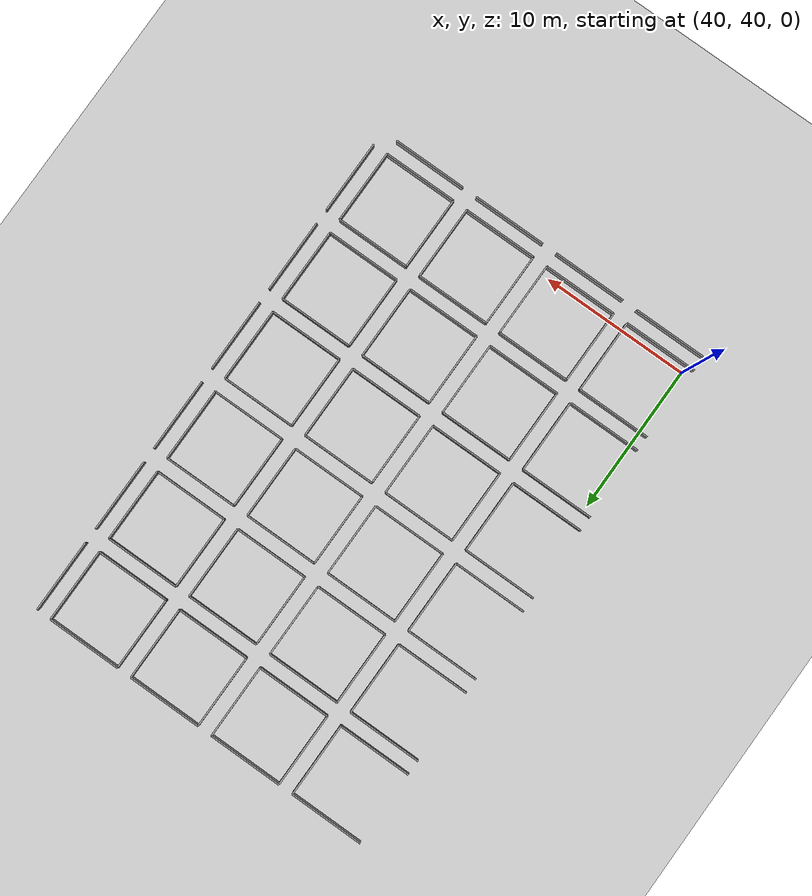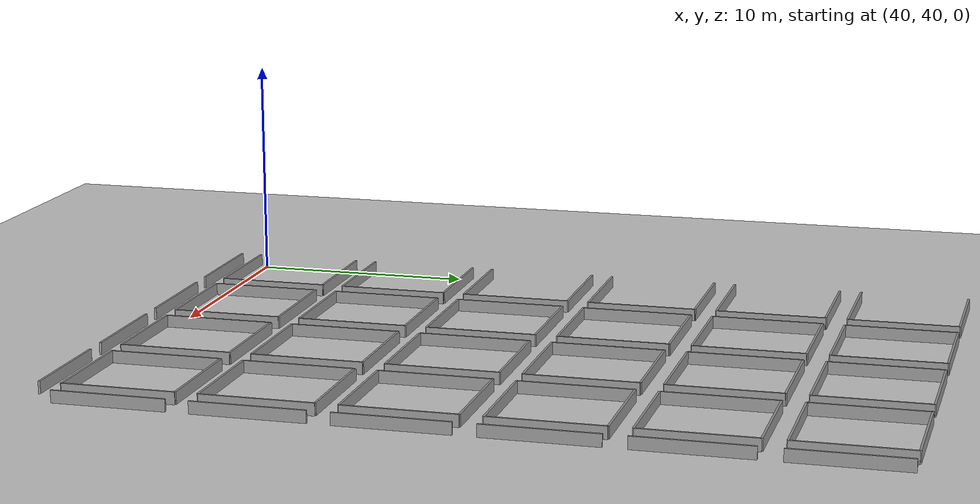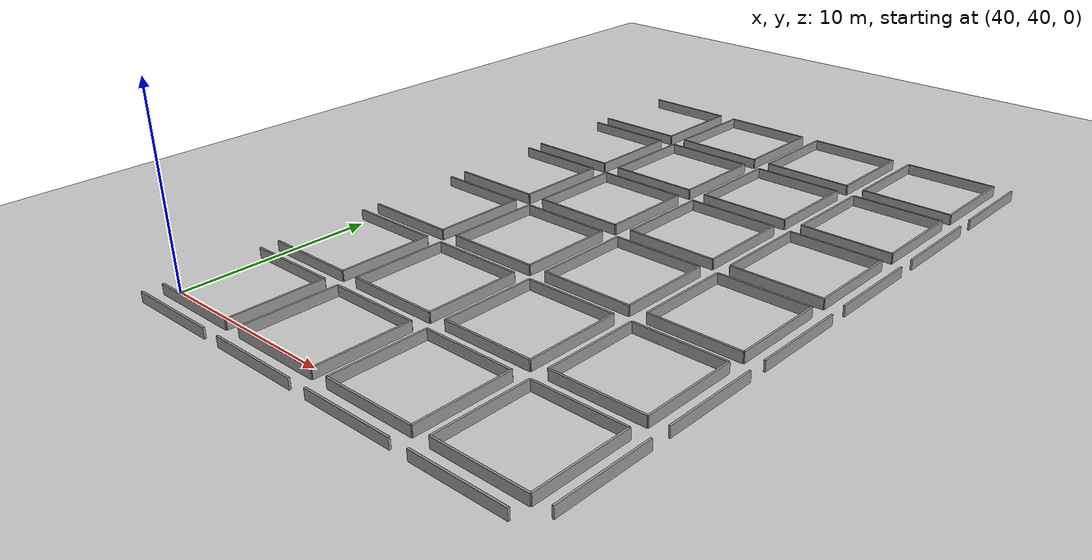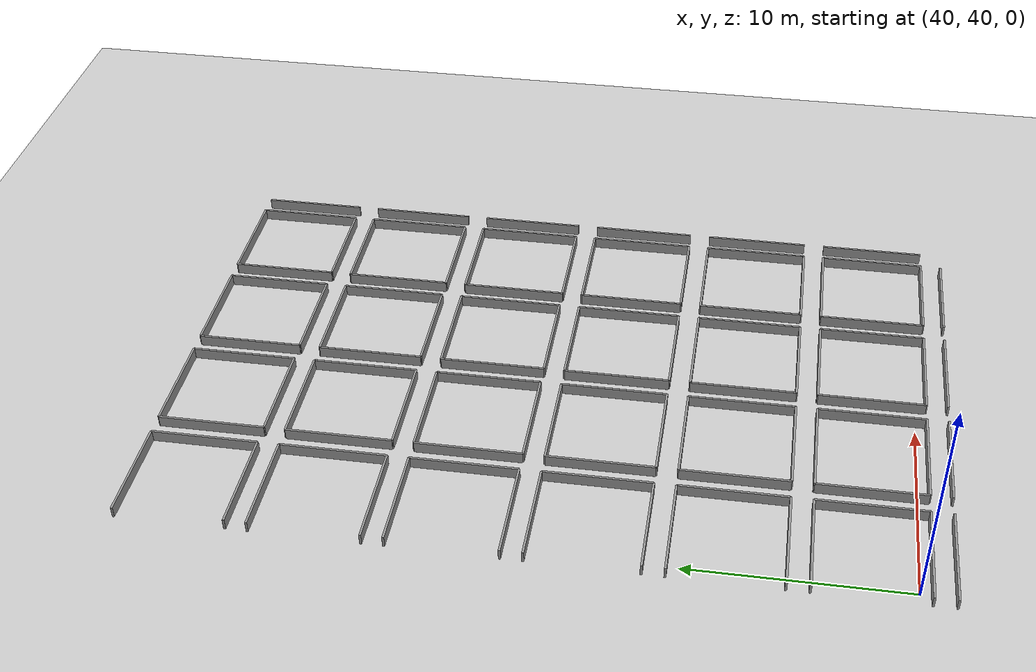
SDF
<sdf version="1.7">
 <world name="default">
  <include><uri>model://sun</uri></include>
  <model name="ground_plane">
   <static>true</static>
   <link name="link">
    <collision name="collision">
     <geometry><plane><normal>0 0 1</normal><size>100 100</size></plane></geometry>
    </collision>
    <visual name="visual">
     <geometry><plane><normal>0 0 1</normal><size>100 100</size></plane></geometry>
     <material>
      <script><uri>file://media/materials/scripts/gazebo.material</uri><name>Gazebo/Grey</name></script>
     </material>
    </visual>
   </link>
  </model>
  <model name="wall_97_north">
   <static>true</static>
   <pose>42 38.5 0 0 0 0</pose>
   <link name="link">
    <collision name="collision"><geometry><box><size>5 0.1 1</size></box></geometry></collision>
    <visual name="visual">
     <geometry><box><size>5 0.1 1</size></box></geometry>
     <material>
      <script><uri>file://media/materials/scripts/gazebo.material</uri><name>Gazebo/Grey</name></script>
     </material>
    </visual>
   </link>
  </model>
  <model name="wall_98_north">
   <static>true</static>
   <pose>48 38.5 0 0 0 0</pose>
   <link name="link">
    <collision name="collision"><geometry><box><size>5 0.1 1</size></box></geometry></collision>
    <visual name="visual">
     <geometry><box><size>5 0.1 1</size></box></geometry>
     <material>
      <script><uri>file://media/materials/scripts/gazebo.material</uri><name>Gazebo/Grey</name></script>
     </material>
    </visual>
   </link>
  </model>
  <model name="wall_99_north">
   <static>true</static>
   <pose>54 38.5 0 0 0 0</pose>
   <link name="link">
    <collision name="collision"><geometry><box><size>5 0.1 1</size></box></geometry></collision>
    <visual name="visual">
     <geometry><box><size>5 0.1 1</size></box></geometry>
     <material>
      <script><uri>file://media/materials/scripts/gazebo.material</uri><name>Gazebo/Grey</name></script>
     </material>
    </visual>
   </link>
  </model>
  <model name="wall_100_north">
   <static>true</static>
   <pose>60 38.5 0 0 0 0</pose>
   <link name="link">
    <collision name="collision"><geometry><box><size>5 0.1 1</size></box></geometry></collision>
    <visual name="visual">
     <geometry><box><size>5 0.1 1</size></box></geometry>
     <material>
      <script><uri>file://media/materials/scripts/gazebo.material</uri><name>Gazebo/Grey</name></script>
     </material>
    </visual>
   </link>
  </model>
  <model name="wall_112_north">
   <static>true</static>
   <pose>42 44.5 0 0 0 0</pose>
   <link name="link">
    <collision name="collision"><geometry><box><size>5 0.1 1</size></box></geometry></collision>
    <visual name="visual">
     <geometry><box><size>5 0.1 1</size></box></geometry>
     <material>
      <script><uri>file://media/materials/scripts/gazebo.material</uri><name>Gazebo/Grey</name></script>
     </material>
    </visual>
   </link>
  </model>
  <model name="wall_112_south">
   <static>true</static>
   <pose>42 39.5 0 0 0 0</pose>
   <link name="link">
    <collision name="collision"><geometry><box><size>5 0.1 1</size></box></geometry></collision>
    <visual name="visual">
     <geometry><box><size>5 0.1 1</size></box></geometry>
     <material>
      <script><uri>file://media/materials/scripts/gazebo.material</uri><name>Gazebo/Grey</name></script>
     </material>
    </visual>
   </link>
  </model>
  <model name="wall_112_east">
   <static>true</static>
   <pose>44.5 42 0 0 0 1.5707</pose>
   <link name="link">
    <collision name="collision"><geometry><box><size>5 0.1 1</size></box></geometry></collision>
    <visual name="visual">
     <geometry><box><size>5 0.1 1</size></box></geometry>
     <material>
      <script><uri>file://media/materials/scripts/gazebo.material</uri><name>Gazebo/Grey</name></script>
     </material>
    </visual>
   </link>
  </model>
  <model name="wall_113_north">
   <static>true</static>
   <pose>48 44.5 0 0 0 0</pose>
   <link name="link">
    <collision name="collision"><geometry><box><size>5 0.1 1</size></box></geometry></collision>
    <visual name="visual">
     <geometry><box><size>5 0.1 1</size></box></geometry>
     <material>
      <script><uri>file://media/materials/scripts/gazebo.material</uri><name>Gazebo/Grey</name></script>
     </material>
    </visual>
   </link>
  </model>
  <model name="wall_113_south">
   <static>true</static>
   <pose>48 39.5 0 0 0 0</pose>
   <link name="link">
    <collision name="collision"><geometry><box><size>5 0.1 1</size></box></geometry></collision>
    <visual name="visual">
     <geometry><box><size>5 0.1 1</size></box></geometry>
     <material>
      <script><uri>file://media/materials/scripts/gazebo.material</uri><name>Gazebo/Grey</name></script>
     </material>
    </visual>
   </link>
  </model>
  <model name="wall_113_east">
   <static>true</static>
   <pose>50.5 42 0 0 0 1.5707</pose>
   <link name="link">
    <collision name="collision"><geometry><box><size>5 0.1 1</size></box></geometry></collision>
    <visual name="visual">
     <geometry><box><size>5 0.1 1</size></box></geometry>
     <material>
      <script><uri>file://media/materials/scripts/gazebo.material</uri><name>Gazebo/Grey</name></script>
     </material>
    </visual>
   </link>
  </model>
  <model name="wall_113_west">
   <static>true</static>
   <pose>45.5 42 0 0 0 1.5707</pose>
   <link name="link">
    <collision name="collision"><geometry><box><size>5 0.1 1</size></box></geometry></collision>
    <visual name="visual">
     <geometry><box><size>5 0.1 1</size></box></geometry>
     <material>
      <script><uri>file://media/materials/scripts/gazebo.material</uri><name>Gazebo/Grey</name></script>
     </material>
    </visual>
   </link>
  </model>
  <model name="wall_114_north">
   <static>true</static>
   <pose>54 44.5 0 0 0 0</pose>
   <link name="link">
    <collision name="collision"><geometry><box><size>5 0.1 1</size></box></geometry></collision>
    <visual name="visual">
     <geometry><box><size>5 0.1 1</size></box></geometry>
     <material>
      <script><uri>file://media/materials/scripts/gazebo.material</uri><name>Gazebo/Grey</name></script>
     </material>
    </visual>
   </link>
  </model>
  <model name="wall_114_south">
   <static>true</static>
   <pose>54 39.5 0 0 0 0</pose>
   <link name="link">
    <collision name="collision"><geometry><box><size>5 0.1 1</size></box></geometry></collision>
    <visual name="visual">
     <geometry><box><size>5 0.1 1</size></box></geometry>
     <material>
      <script><uri>file://media/materials/scripts/gazebo.material</uri><name>Gazebo/Grey</name></script>
     </material>
    </visual>
   </link>
  </model>
  <model name="wall_114_east">
   <static>true</static>
   <pose>56.5 42 0 0 0 1.5707</pose>
   <link name="link">
    <collision name="collision"><geometry><box><size>5 0.1 1</size></box></geometry></collision>
    <visual name="visual">
     <geometry><box><size>5 0.1 1</size></box></geometry>
     <material>
      <script><uri>file://media/materials/scripts/gazebo.material</uri><name>Gazebo/Grey</name></script>
     </material>
    </visual>
   </link>
  </model>
  <model name="wall_114_west">
   <static>true</static>
   <pose>51.5 42 0 0 0 1.5707</pose>
   <link name="link">
    <collision name="collision"><geometry><box><size>5 0.1 1</size></box></geometry></collision>
    <visual name="visual">
     <geometry><box><size>5 0.1 1</size></box></geometry>
     <material>
      <script><uri>file://media/materials/scripts/gazebo.material</uri><name>Gazebo/Grey</name></script>
     </material>
    </visual>
   </link>
  </model>
  <model name="wall_115_north">
   <static>true</static>
   <pose>60 44.5 0 0 0 0</pose>
   <link name="link">
    <collision name="collision"><geometry><box><size>5 0.1 1</size></box></geometry></collision>
    <visual name="visual">
     <geometry><box><size>5 0.1 1</size></box></geometry>
     <material>
      <script><uri>file://media/materials/scripts/gazebo.material</uri><name>Gazebo/Grey</name></script>
     </material>
    </visual>
   </link>
  </model>
  <model name="wall_115_south">
   <static>true</static>
   <pose>60 39.5 0 0 0 0</pose>
   <link name="link">
    <collision name="collision"><geometry><box><size>5 0.1 1</size></box></geometry></collision>
    <visual name="visual">
     <geometry><box><size>5 0.1 1</size></box></geometry>
     <material>
      <script><uri>file://media/materials/scripts/gazebo.material</uri><name>Gazebo/Grey</name></script>
     </material>
    </visual>
   </link>
  </model>
  <model name="wall_115_east">
   <static>true</static>
   <pose>62.5 42 0 0 0 1.5707</pose>
   <link name="link">
    <collision name="collision"><geometry><box><size>5 0.1 1</size></box></geometry></collision>
    <visual name="visual">
     <geometry><box><size>5 0.1 1</size></box></geometry>
     <material>
      <script><uri>file://media/materials/scripts/gazebo.material</uri><name>Gazebo/Grey</name></script>
     </material>
    </visual>
   </link>
  </model>
  <model name="wall_115_west">
   <static>true</static>
   <pose>57.5 42 0 0 0 1.5707</pose>
   <link name="link">
    <collision name="collision"><geometry><box><size>5 0.1 1</size></box></geometry></collision>
    <visual name="visual">
     <geometry><box><size>5 0.1 1</size></box></geometry>
     <material>
      <script><uri>file://media/materials/scripts/gazebo.material</uri><name>Gazebo/Grey</name></script>
     </material>
    </visual>
   </link>
  </model>
  <model name="wall_116_west">
   <static>true</static>
   <pose>63.5 42 0 0 0 1.5707</pose>
   <link name="link">
    <collision name="collision"><geometry><box><size>5 0.1 1</size></box></geometry></collision>
    <visual name="visual">
     <geometry><box><size>5 0.1 1</size></box></geometry>
     <material>
      <script><uri>file://media/materials/scripts/gazebo.material</uri><name>Gazebo/Grey</name></script>
     </material>
    </visual>
   </link>
  </model>
  <model name="wall_127_north">
   <static>true</static>
   <pose>42 50.5 0 0 0 0</pose>
   <link name="link">
    <collision name="collision"><geometry><box><size>5 0.1 1</size></box></geometry></collision>
    <visual name="visual">
     <geometry><box><size>5 0.1 1</size></box></geometry>
     <material>
      <script><uri>file://media/materials/scripts/gazebo.material</uri><name>Gazebo/Grey</name></script>
     </material>
    </visual>
   </link>
  </model>
  <model name="wall_127_south">
   <static>true</static>
   <pose>42 45.5 0 0 0 0</pose>
   <link name="link">
    <collision name="collision"><geometry><box><size>5 0.1 1</size></box></geometry></collision>
    <visual name="visual">
     <geometry><box><size>5 0.1 1</size></box></geometry>
     <material>
      <script><uri>file://media/materials/scripts/gazebo.material</uri><name>Gazebo/Grey</name></script>
     </material>
    </visual>
   </link>
  </model>
  <model name="wall_127_east">
   <static>true</static>
   <pose>44.5 48 0 0 0 1.5707</pose>
   <link name="link">
    <collision name="collision"><geometry><box><size>5 0.1 1</size></box></geometry></collision>
    <visual name="visual">
     <geometry><box><size>5 0.1 1</size></box></geometry>
     <material>
      <script><uri>file://media/materials/scripts/gazebo.material</uri><name>Gazebo/Grey</name></script>
     </material>
    </visual>
   </link>
  </model>
  <model name="wall_128_north">
   <static>true</static>
   <pose>48 50.5 0 0 0 0</pose>
   <link name="link">
    <collision name="collision"><geometry><box><size>5 0.1 1</size></box></geometry></collision>
    <visual name="visual">
     <geometry><box><size>5 0.1 1</size></box></geometry>
     <material>
      <script><uri>file://media/materials/scripts/gazebo.material</uri><name>Gazebo/Grey</name></script>
     </material>
    </visual>
   </link>
  </model>
  <model name="wall_128_south">
   <static>true</static>
   <pose>48 45.5 0 0 0 0</pose>
   <link name="link">
    <collision name="collision"><geometry><box><size>5 0.1 1</size></box></geometry></collision>
    <visual name="visual">
     <geometry><box><size>5 0.1 1</size></box></geometry>
     <material>
      <script><uri>file://media/materials/scripts/gazebo.material</uri><name>Gazebo/Grey</name></script>
     </material>
    </visual>
   </link>
  </model>
  <model name="wall_128_east">
   <static>true</static>
   <pose>50.5 48 0 0 0 1.5707</pose>
   <link name="link">
    <collision name="collision"><geometry><box><size>5 0.1 1</size></box></geometry></collision>
    <visual name="visual">
     <geometry><box><size>5 0.1 1</size></box></geometry>
     <material>
      <script><uri>file://media/materials/scripts/gazebo.material</uri><name>Gazebo/Grey</name></script>
     </material>
    </visual>
   </link>
  </model>
  <model name="wall_128_west">
   <static>true</static>
   <pose>45.5 48 0 0 0 1.5707</pose>
   <link name="link">
    <collision name="collision"><geometry><box><size>5 0.1 1</size></box></geometry></collision>
    <visual name="visual">
     <geometry><box><size>5 0.1 1</size></box></geometry>
     <material>
      <script><uri>file://media/materials/scripts/gazebo.material</uri><name>Gazebo/Grey</name></script>
     </material>
    </visual>
   </link>
  </model>
  <model name="wall_129_north">
   <static>true</static>
   <pose>54 50.5 0 0 0 0</pose>
   <link name="link">
    <collision name="collision"><geometry><box><size>5 0.1 1</size></box></geometry></collision>
    <visual name="visual">
     <geometry><box><size>5 0.1 1</size></box></geometry>
     <material>
      <script><uri>file://media/materials/scripts/gazebo.material</uri><name>Gazebo/Grey</name></script>
     </material>
    </visual>
   </link>
  </model>
  <model name="wall_129_south">
   <static>true</static>
   <pose>54 45.5 0 0 0 0</pose>
   <link name="link">
    <collision name="collision"><geometry><box><size>5 0.1 1</size></box></geometry></collision>
    <visual name="visual">
     <geometry><box><size>5 0.1 1</size></box></geometry>
     <material>
      <script><uri>file://media/materials/scripts/gazebo.material</uri><name>Gazebo/Grey</name></script>
     </material>
    </visual>
   </link>
  </model>
  <model name="wall_129_east">
   <static>true</static>
   <pose>56.5 48 0 0 0 1.5707</pose>
   <link name="link">
    <collision name="collision"><geometry><box><size>5 0.1 1</size></box></geometry></collision>
    <visual name="visual">
     <geometry><box><size>5 0.1 1</size></box></geometry>
     <material>
      <script><uri>file://media/materials/scripts/gazebo.material</uri><name>Gazebo/Grey</name></script>
     </material>
    </visual>
   </link>
  </model>
  <model name="wall_129_west">
   <static>true</static>
   <pose>51.5 48 0 0 0 1.5707</pose>
   <link name="link">
    <collision name="collision"><geometry><box><size>5 0.1 1</size></box></geometry></collision>
    <visual name="visual">
     <geometry><box><size>5 0.1 1</size></box></geometry>
     <material>
      <script><uri>file://media/materials/scripts/gazebo.material</uri><name>Gazebo/Grey</name></script>
     </material>
    </visual>
   </link>
  </model>
  <model name="wall_130_north">
   <static>true</static>
   <pose>60 50.5 0 0 0 0</pose>
   <link name="link">
    <collision name="collision"><geometry><box><size>5 0.1 1</size></box></geometry></collision>
    <visual name="visual">
     <geometry><box><size>5 0.1 1</size></box></geometry>
     <material>
      <script><uri>file://media/materials/scripts/gazebo.material</uri><name>Gazebo/Grey</name></script>
     </material>
    </visual>
   </link>
  </model>
  <model name="wall_130_south">
   <static>true</static>
   <pose>60 45.5 0 0 0 0</pose>
   <link name="link">
    <collision name="collision"><geometry><box><size>5 0.1 1</size></box></geometry></collision>
    <visual name="visual">
     <geometry><box><size>5 0.1 1</size></box></geometry>
     <material>
      <script><uri>file://media/materials/scripts/gazebo.material</uri><name>Gazebo/Grey</name></script>
     </material>
    </visual>
   </link>
  </model>
  <model name="wall_130_east">
   <static>true</static>
   <pose>62.5 48 0 0 0 1.5707</pose>
   <link name="link">
    <collision name="collision"><geometry><box><size>5 0.1 1</size></box></geometry></collision>
    <visual name="visual">
     <geometry><box><size>5 0.1 1</size></box></geometry>
     <material>
      <script><uri>file://media/materials/scripts/gazebo.material</uri><name>Gazebo/Grey</name></script>
     </material>
    </visual>
   </link>
  </model>
  <model name="wall_130_west">
   <static>true</static>
   <pose>57.5 48 0 0 0 1.5707</pose>
   <link name="link">
    <collision name="collision"><geometry><box><size>5 0.1 1</size></box></geometry></collision>
    <visual name="visual">
     <geometry><box><size>5 0.1 1</size></box></geometry>
     <material>
      <script><uri>file://media/materials/scripts/gazebo.material</uri><name>Gazebo/Grey</name></script>
     </material>
    </visual>
   </link>
  </model>
  <model name="wall_131_west">
   <static>true</static>
   <pose>63.5 48 0 0 0 1.5707</pose>
   <link name="link">
    <collision name="collision"><geometry><box><size>5 0.1 1</size></box></geometry></collision>
    <visual name="visual">
     <geometry><box><size>5 0.1 1</size></box></geometry>
     <material>
      <script><uri>file://media/materials/scripts/gazebo.material</uri><name>Gazebo/Grey</name></script>
     </material>
    </visual>
   </link>
  </model>
  <model name="wall_142_north">
   <static>true</static>
   <pose>42 56.5 0 0 0 0</pose>
   <link name="link">
    <collision name="collision"><geometry><box><size>5 0.1 1</size></box></geometry></collision>
    <visual name="visual">
     <geometry><box><size>5 0.1 1</size></box></geometry>
     <material>
      <script><uri>file://media/materials/scripts/gazebo.material</uri><name>Gazebo/Grey</name></script>
     </material>
    </visual>
   </link>
  </model>
  <model name="wall_142_south">
   <static>true</static>
   <pose>42 51.5 0 0 0 0</pose>
   <link name="link">
    <collision name="collision"><geometry><box><size>5 0.1 1</size></box></geometry></collision>
    <visual name="visual">
     <geometry><box><size>5 0.1 1</size></box></geometry>
     <material>
      <script><uri>file://media/materials/scripts/gazebo.material</uri><name>Gazebo/Grey</name></script>
     </material>
    </visual>
   </link>
  </model>
  <model name="wall_142_east">
   <static>true</static>
   <pose>44.5 54 0 0 0 1.5707</pose>
   <link name="link">
    <collision name="collision"><geometry><box><size>5 0.1 1</size></box></geometry></collision>
    <visual name="visual">
     <geometry><box><size>5 0.1 1</size></box></geometry>
     <material>
      <script><uri>file://media/materials/scripts/gazebo.material</uri><name>Gazebo/Grey</name></script>
     </material>
    </visual>
   </link>
  </model>
  <model name="wall_143_north">
   <static>true</static>
   <pose>48 56.5 0 0 0 0</pose>
   <link name="link">
    <collision name="collision"><geometry><box><size>5 0.1 1</size></box></geometry></collision>
    <visual name="visual">
     <geometry><box><size>5 0.1 1</size></box></geometry>
     <material>
      <script><uri>file://media/materials/scripts/gazebo.material</uri><name>Gazebo/Grey</name></script>
     </material>
    </visual>
   </link>
  </model>
  <model name="wall_143_south">
   <static>true</static>
   <pose>48 51.5 0 0 0 0</pose>
   <link name="link">
    <collision name="collision"><geometry><box><size>5 0.1 1</size></box></geometry></collision>
    <visual name="visual">
     <geometry><box><size>5 0.1 1</size></box></geometry>
     <material>
      <script><uri>file://media/materials/scripts/gazebo.material</uri><name>Gazebo/Grey</name></script>
     </material>
    </visual>
   </link>
  </model>
  <model name="wall_143_east">
   <static>true</static>
   <pose>50.5 54 0 0 0 1.5707</pose>
   <link name="link">
    <collision name="collision"><geometry><box><size>5 0.1 1</size></box></geometry></collision>
    <visual name="visual">
     <geometry><box><size>5 0.1 1</size></box></geometry>
     <material>
      <script><uri>file://media/materials/scripts/gazebo.material</uri><name>Gazebo/Grey</name></script>
     </material>
    </visual>
   </link>
  </model>
  <model name="wall_143_west">
   <static>true</static>
   <pose>45.5 54 0 0 0 1.5707</pose>
   <link name="link">
    <collision name="collision"><geometry><box><size>5 0.1 1</size></box></geometry></collision>
    <visual name="visual">
     <geometry><box><size>5 0.1 1</size></box></geometry>
     <material>
      <script><uri>file://media/materials/scripts/gazebo.material</uri><name>Gazebo/Grey</name></script>
     </material>
    </visual>
   </link>
  </model>
  <model name="wall_144_north">
   <static>true</static>
   <pose>54 56.5 0 0 0 0</pose>
   <link name="link">
    <collision name="collision"><geometry><box><size>5 0.1 1</size></box></geometry></collision>
    <visual name="visual">
     <geometry><box><size>5 0.1 1</size></box></geometry>
     <material>
      <script><uri>file://media/materials/scripts/gazebo.material</uri><name>Gazebo/Grey</name></script>
     </material>
    </visual>
   </link>
  </model>
  <model name="wall_144_south">
   <static>true</static>
   <pose>54 51.5 0 0 0 0</pose>
   <link name="link">
    <collision name="collision"><geometry><box><size>5 0.1 1</size></box></geometry></collision>
    <visual name="visual">
     <geometry><box><size>5 0.1 1</size></box></geometry>
     <material>
      <script><uri>file://media/materials/scripts/gazebo.material</uri><name>Gazebo/Grey</name></script>
     </material>
    </visual>
   </link>
  </model>
  <model name="wall_144_east">
   <static>true</static>
   <pose>56.5 54 0 0 0 1.5707</pose>
   <link name="link">
    <collision name="collision"><geometry><box><size>5 0.1 1</size></box></geometry></collision>
    <visual name="visual">
     <geometry><box><size>5 0.1 1</size></box></geometry>
     <material>
      <script><uri>file://media/materials/scripts/gazebo.material</uri><name>Gazebo/Grey</name></script>
     </material>
    </visual>
   </link>
  </model>
  <model name="wall_144_west">
   <static>true</static>
   <pose>51.5 54 0 0 0 1.5707</pose>
   <link name="link">
    <collision name="collision"><geometry><box><size>5 0.1 1</size></box></geometry></collision>
    <visual name="visual">
     <geometry><box><size>5 0.1 1</size></box></geometry>
     <material>
      <script><uri>file://media/materials/scripts/gazebo.material</uri><name>Gazebo/Grey</name></script>
     </material>
    </visual>
   </link>
  </model>
  <model name="wall_145_north">
   <static>true</static>
   <pose>60 56.5 0 0 0 0</pose>
   <link name="link">
    <collision name="collision"><geometry><box><size>5 0.1 1</size></box></geometry></collision>
    <visual name="visual">
     <geometry><box><size>5 0.1 1</size></box></geometry>
     <material>
      <script><uri>file://media/materials/scripts/gazebo.material</uri><name>Gazebo/Grey</name></script>
     </material>
    </visual>
   </link>
  </model>
  <model name="wall_145_south">
   <static>true</static>
   <pose>60 51.5 0 0 0 0</pose>
   <link name="link">
    <collision name="collision"><geometry><box><size>5 0.1 1</size></box></geometry></collision>
    <visual name="visual">
     <geometry><box><size>5 0.1 1</size></box></geometry>
     <material>
      <script><uri>file://media/materials/scripts/gazebo.material</uri><name>Gazebo/Grey</name></script>
     </material>
    </visual>
   </link>
  </model>
  <model name="wall_145_east">
   <static>true</static>
   <pose>62.5 54 0 0 0 1.5707</pose>
   <link name="link">
    <collision name="collision"><geometry><box><size>5 0.1 1</size></box></geometry></collision>
    <visual name="visual">
     <geometry><box><size>5 0.1 1</size></box></geometry>
     <material>
      <script><uri>file://media/materials/scripts/gazebo.material</uri><name>Gazebo/Grey</name></script>
     </material>
    </visual>
   </link>
  </model>
  <model name="wall_145_west">
   <static>true</static>
   <pose>57.5 54 0 0 0 1.5707</pose>
   <link name="link">
    <collision name="collision"><geometry><box><size>5 0.1 1</size></box></geometry></collision>
    <visual name="visual">
     <geometry><box><size>5 0.1 1</size></box></geometry>
     <material>
      <script><uri>file://media/materials/scripts/gazebo.material</uri><name>Gazebo/Grey</name></script>
     </material>
    </visual>
   </link>
  </model>
  <model name="wall_146_west">
   <static>true</static>
   <pose>63.5 54 0 0 0 1.5707</pose>
   <link name="link">
    <collision name="collision"><geometry><box><size>5 0.1 1</size></box></geometry></collision>
    <visual name="visual">
     <geometry><box><size>5 0.1 1</size></box></geometry>
     <material>
      <script><uri>file://media/materials/scripts/gazebo.material</uri><name>Gazebo/Grey</name></script>
     </material>
    </visual>
   </link>
  </model>
  <model name="wall_157_north">
   <static>true</static>
   <pose>42 62.5 0 0 0 0</pose>
   <link name="link">
    <collision name="collision"><geometry><box><size>5 0.1 1</size></box></geometry></collision>
    <visual name="visual">
     <geometry><box><size>5 0.1 1</size></box></geometry>
     <material>
      <script><uri>file://media/materials/scripts/gazebo.material</uri><name>Gazebo/Grey</name></script>
     </material>
    </visual>
   </link>
  </model>
  <model name="wall_157_south">
   <static>true</static>
   <pose>42 57.5 0 0 0 0</pose>
   <link name="link">
    <collision name="collision"><geometry><box><size>5 0.1 1</size></box></geometry></collision>
    <visual name="visual">
     <geometry><box><size>5 0.1 1</size></box></geometry>
     <material>
      <script><uri>file://media/materials/scripts/gazebo.material</uri><name>Gazebo/Grey</name></script>
     </material>
    </visual>
   </link>
  </model>
  <model name="wall_157_east">
   <static>true</static>
   <pose>44.5 60 0 0 0 1.5707</pose>
   <link name="link">
    <collision name="collision"><geometry><box><size>5 0.1 1</size></box></geometry></collision>
    <visual name="visual">
     <geometry><box><size>5 0.1 1</size></box></geometry>
     <material>
      <script><uri>file://media/materials/scripts/gazebo.material</uri><name>Gazebo/Grey</name></script>
     </material>
    </visual>
   </link>
  </model>
  <model name="wall_158_north">
   <static>true</static>
   <pose>48 62.5 0 0 0 0</pose>
   <link name="link">
    <collision name="collision"><geometry><box><size>5 0.1 1</size></box></geometry></collision>
    <visual name="visual">
     <geometry><box><size>5 0.1 1</size></box></geometry>
     <material>
      <script><uri>file://media/materials/scripts/gazebo.material</uri><name>Gazebo/Grey</name></script>
     </material>
    </visual>
   </link>
  </model>
  <model name="wall_158_south">
   <static>true</static>
   <pose>48 57.5 0 0 0 0</pose>
   <link name="link">
    <collision name="collision"><geometry><box><size>5 0.1 1</size></box></geometry></collision>
    <visual name="visual">
     <geometry><box><size>5 0.1 1</size></box></geometry>
     <material>
      <script><uri>file://media/materials/scripts/gazebo.material</uri><name>Gazebo/Grey</name></script>
     </material>
    </visual>
   </link>
  </model>
  <model name="wall_158_east">
   <static>true</static>
   <pose>50.5 60 0 0 0 1.5707</pose>
   <link name="link">
    <collision name="collision"><geometry><box><size>5 0.1 1</size></box></geometry></collision>
    <visual name="visual">
     <geometry><box><size>5 0.1 1</size></box></geometry>
     <material>
      <script><uri>file://media/materials/scripts/gazebo.material</uri><name>Gazebo/Grey</name></script>
     </material>
    </visual>
   </link>
  </model>
  <model name="wall_158_west">
   <static>true</static>
   <pose>45.5 60 0 0 0 1.5707</pose>
   <link name="link">
    <collision name="collision"><geometry><box><size>5 0.1 1</size></box></geometry></collision>
    <visual name="visual">
     <geometry><box><size>5 0.1 1</size></box></geometry>
     <material>
      <script><uri>file://media/materials/scripts/gazebo.material</uri><name>Gazebo/Grey</name></script>
     </material>
    </visual>
   </link>
  </model>
  <model name="wall_159_north">
   <static>true</static>
   <pose>54 62.5 0 0 0 0</pose>
   <link name="link">
    <collision name="collision"><geometry><box><size>5 0.1 1</size></box></geometry></collision>
    <visual name="visual">
     <geometry><box><size>5 0.1 1</size></box></geometry>
     <material>
      <script><uri>file://media/materials/scripts/gazebo.material</uri><name>Gazebo/Grey</name></script>
     </material>
    </visual>
   </link>
  </model>
  <model name="wall_159_south">
   <static>true</static>
   <pose>54 57.5 0 0 0 0</pose>
   <link name="link">
    <collision name="collision"><geometry><box><size>5 0.1 1</size></box></geometry></collision>
    <visual name="visual">
     <geometry><box><size>5 0.1 1</size></box></geometry>
     <material>
      <script><uri>file://media/materials/scripts/gazebo.material</uri><name>Gazebo/Grey</name></script>
     </material>
    </visual>
   </link>
  </model>
  <model name="wall_159_east">
   <static>true</static>
   <pose>56.5 60 0 0 0 1.5707</pose>
   <link name="link">
    <collision name="collision"><geometry><box><size>5 0.1 1</size></box></geometry></collision>
    <visual name="visual">
     <geometry><box><size>5 0.1 1</size></box></geometry>
     <material>
      <script><uri>file://media/materials/scripts/gazebo.material</uri><name>Gazebo/Grey</name></script>
     </material>
    </visual>
   </link>
  </model>
  <model name="wall_159_west">
   <static>true</static>
   <pose>51.5 60 0 0 0 1.5707</pose>
   <link name="link">
    <collision name="collision"><geometry><box><size>5 0.1 1</size></box></geometry></collision>
    <visual name="visual">
     <geometry><box><size>5 0.1 1</size></box></geometry>
     <material>
      <script><uri>file://media/materials/scripts/gazebo.material</uri><name>Gazebo/Grey</name></script>
     </material>
    </visual>
   </link>
  </model>
  <model name="wall_160_north">
   <static>true</static>
   <pose>60 62.5 0 0 0 0</pose>
   <link name="link">
    <collision name="collision"><geometry><box><size>5 0.1 1</size></box></geometry></collision>
    <visual name="visual">
     <geometry><box><size>5 0.1 1</size></box></geometry>
     <material>
      <script><uri>file://media/materials/scripts/gazebo.material</uri><name>Gazebo/Grey</name></script>
     </material>
    </visual>
   </link>
  </model>
  <model name="wall_160_south">
   <static>true</static>
   <pose>60 57.5 0 0 0 0</pose>
   <link name="link">
    <collision name="collision"><geometry><box><size>5 0.1 1</size></box></geometry></collision>
    <visual name="visual">
     <geometry><box><size>5 0.1 1</size></box></geometry>
     <material>
      <script><uri>file://media/materials/scripts/gazebo.material</uri><name>Gazebo/Grey</name></script>
     </material>
    </visual>
   </link>
  </model>
  <model name="wall_160_east">
   <static>true</static>
   <pose>62.5 60 0 0 0 1.5707</pose>
   <link name="link">
    <collision name="collision"><geometry><box><size>5 0.1 1</size></box></geometry></collision>
    <visual name="visual">
     <geometry><box><size>5 0.1 1</size></box></geometry>
     <material>
      <script><uri>file://media/materials/scripts/gazebo.material</uri><name>Gazebo/Grey</name></script>
     </material>
    </visual>
   </link>
  </model>
  <model name="wall_160_west">
   <static>true</static>
   <pose>57.5 60 0 0 0 1.5707</pose>
   <link name="link">
    <collision name="collision"><geometry><box><size>5 0.1 1</size></box></geometry></collision>
    <visual name="visual">
     <geometry><box><size>5 0.1 1</size></box></geometry>
     <material>
      <script><uri>file://media/materials/scripts/gazebo.material</uri><name>Gazebo/Grey</name></script>
     </material>
    </visual>
   </link>
  </model>
  <model name="wall_161_west">
   <static>true</static>
   <pose>63.5 60 0 0 0 1.5707</pose>
   <link name="link">
    <collision name="collision"><geometry><box><size>5 0.1 1</size></box></geometry></collision>
    <visual name="visual">
     <geometry><box><size>5 0.1 1</size></box></geometry>
     <material>
      <script><uri>file://media/materials/scripts/gazebo.material</uri><name>Gazebo/Grey</name></script>
     </material>
    </visual>
   </link>
  </model>
  <model name="wall_172_north">
   <static>true</static>
   <pose>42 68.5 0 0 0 0</pose>
   <link name="link">
    <collision name="collision"><geometry><box><size>5 0.1 1</size></box></geometry></collision>
    <visual name="visual">
     <geometry><box><size>5 0.1 1</size></box></geometry>
     <material>
      <script><uri>file://media/materials/scripts/gazebo.material</uri><name>Gazebo/Grey</name></script>
     </material>
    </visual>
   </link>
  </model>
  <model name="wall_172_south">
   <static>true</static>
   <pose>42 63.5 0 0 0 0</pose>
   <link name="link">
    <collision name="collision"><geometry><box><size>5 0.1 1</size></box></geometry></collision>
    <visual name="visual">
     <geometry><box><size>5 0.1 1</size></box></geometry>
     <material>
      <script><uri>file://media/materials/scripts/gazebo.material</uri><name>Gazebo/Grey</name></script>
     </material>
    </visual>
   </link>
  </model>
  <model name="wall_172_east">
   <static>true</static>
   <pose>44.5 66 0 0 0 1.5707</pose>
   <link name="link">
    <collision name="collision"><geometry><box><size>5 0.1 1</size></box></geometry></collision>
    <visual name="visual">
     <geometry><box><size>5 0.1 1</size></box></geometry>
     <material>
      <script><uri>file://media/materials/scripts/gazebo.material</uri><name>Gazebo/Grey</name></script>
     </material>
    </visual>
   </link>
  </model>
  <model name="wall_173_north">
   <static>true</static>
   <pose>48 68.5 0 0 0 0</pose>
   <link name="link">
    <collision name="collision"><geometry><box><size>5 0.1 1</size></box></geometry></collision>
    <visual name="visual">
     <geometry><box><size>5 0.1 1</size></box></geometry>
     <material>
      <script><uri>file://media/materials/scripts/gazebo.material</uri><name>Gazebo/Grey</name></script>
     </material>
    </visual>
   </link>
  </model>
  <model name="wall_173_south">
   <static>true</static>
   <pose>48 63.5 0 0 0 0</pose>
   <link name="link">
    <collision name="collision"><geometry><box><size>5 0.1 1</size></box></geometry></collision>
    <visual name="visual">
     <geometry><box><size>5 0.1 1</size></box></geometry>
     <material>
      <script><uri>file://media/materials/scripts/gazebo.material</uri><name>Gazebo/Grey</name></script>
     </material>
    </visual>
   </link>
  </model>
  <model name="wall_173_east">
   <static>true</static>
   <pose>50.5 66 0 0 0 1.5707</pose>
   <link name="link">
    <collision name="collision"><geometry><box><size>5 0.1 1</size></box></geometry></collision>
    <visual name="visual">
     <geometry><box><size>5 0.1 1</size></box></geometry>
     <material>
      <script><uri>file://media/materials/scripts/gazebo.material</uri><name>Gazebo/Grey</name></script>
     </material>
    </visual>
   </link>
  </model>
  <model name="wall_173_west">
   <static>true</static>
   <pose>45.5 66 0 0 0 1.5707</pose>
   <link name="link">
    <collision name="collision"><geometry><box><size>5 0.1 1</size></box></geometry></collision>
    <visual name="visual">
     <geometry><box><size>5 0.1 1</size></box></geometry>
     <material>
      <script><uri>file://media/materials/scripts/gazebo.material</uri><name>Gazebo/Grey</name></script>
     </material>
    </visual>
   </link>
  </model>
  <model name="wall_174_north">
   <static>true</static>
   <pose>54 68.5 0 0 0 0</pose>
   <link name="link">
    <collision name="collision"><geometry><box><size>5 0.1 1</size></box></geometry></collision>
    <visual name="visual">
     <geometry><box><size>5 0.1 1</size></box></geometry>
     <material>
      <script><uri>file://media/materials/scripts/gazebo.material</uri><name>Gazebo/Grey</name></script>
     </material>
    </visual>
   </link>
  </model>
  <model name="wall_174_south">
   <static>true</static>
   <pose>54 63.5 0 0 0 0</pose>
   <link name="link">
    <collision name="collision"><geometry><box><size>5 0.1 1</size></box></geometry></collision>
    <visual name="visual">
     <geometry><box><size>5 0.1 1</size></box></geometry>
     <material>
      <script><uri>file://media/materials/scripts/gazebo.material</uri><name>Gazebo/Grey</name></script>
     </material>
    </visual>
   </link>
  </model>
  <model name="wall_174_east">
   <static>true</static>
   <pose>56.5 66 0 0 0 1.5707</pose>
   <link name="link">
    <collision name="collision"><geometry><box><size>5 0.1 1</size></box></geometry></collision>
    <visual name="visual">
     <geometry><box><size>5 0.1 1</size></box></geometry>
     <material>
      <script><uri>file://media/materials/scripts/gazebo.material</uri><name>Gazebo/Grey</name></script>
     </material>
    </visual>
   </link>
  </model>
  <model name="wall_174_west">
   <static>true</static>
   <pose>51.5 66 0 0 0 1.5707</pose>
   <link name="link">
    <collision name="collision"><geometry><box><size>5 0.1 1</size></box></geometry></collision>
    <visual name="visual">
     <geometry><box><size>5 0.1 1</size></box></geometry>
     <material>
      <script><uri>file://media/materials/scripts/gazebo.material</uri><name>Gazebo/Grey</name></script>
     </material>
    </visual>
   </link>
  </model>
  <model name="wall_175_north">
   <static>true</static>
   <pose>60 68.5 0 0 0 0</pose>
   <link name="link">
    <collision name="collision"><geometry><box><size>5 0.1 1</size></box></geometry></collision>
    <visual name="visual">
     <geometry><box><size>5 0.1 1</size></box></geometry>
     <material>
      <script><uri>file://media/materials/scripts/gazebo.material</uri><name>Gazebo/Grey</name></script>
     </material>
    </visual>
   </link>
  </model>
  <model name="wall_175_south">
   <static>true</static>
   <pose>60 63.5 0 0 0 0</pose>
   <link name="link">
    <collision name="collision"><geometry><box><size>5 0.1 1</size></box></geometry></collision>
    <visual name="visual">
     <geometry><box><size>5 0.1 1</size></box></geometry>
     <material>
      <script><uri>file://media/materials/scripts/gazebo.material</uri><name>Gazebo/Grey</name></script>
     </material>
    </visual>
   </link>
  </model>
  <model name="wall_175_east">
   <static>true</static>
   <pose>62.5 66 0 0 0 1.5707</pose>
   <link name="link">
    <collision name="collision"><geometry><box><size>5 0.1 1</size></box></geometry></collision>
    <visual name="visual">
     <geometry><box><size>5 0.1 1</size></box></geometry>
     <material>
      <script><uri>file://media/materials/scripts/gazebo.material</uri><name>Gazebo/Grey</name></script>
     </material>
    </visual>
   </link>
  </model>
  <model name="wall_175_west">
   <static>true</static>
   <pose>57.5 66 0 0 0 1.5707</pose>
   <link name="link">
    <collision name="collision"><geometry><box><size>5 0.1 1</size></box></geometry></collision>
    <visual name="visual">
     <geometry><box><size>5 0.1 1</size></box></geometry>
     <material>
      <script><uri>file://media/materials/scripts/gazebo.material</uri><name>Gazebo/Grey</name></script>
     </material>
    </visual>
   </link>
  </model>
  <model name="wall_176_west">
   <static>true</static>
   <pose>63.5 66 0 0 0 1.5707</pose>
   <link name="link">
    <collision name="collision"><geometry><box><size>5 0.1 1</size></box></geometry></collision>
    <visual name="visual">
     <geometry><box><size>5 0.1 1</size></box></geometry>
     <material>
      <script><uri>file://media/materials/scripts/gazebo.material</uri><name>Gazebo/Grey</name></script>
     </material>
    </visual>
   </link>
  </model>
  <model name="wall_187_north">
   <static>true</static>
   <pose>42 74.5 0 0 0 0</pose>
   <link name="link">
    <collision name="collision"><geometry><box><size>5 0.1 1</size></box></geometry></collision>
    <visual name="visual">
     <geometry><box><size>5 0.1 1</size></box></geometry>
     <material>
      <script><uri>file://media/materials/scripts/gazebo.material</uri><name>Gazebo/Grey</name></script>
     </material>
    </visual>
   </link>
  </model>
  <model name="wall_187_south">
   <static>true</static>
   <pose>42 69.5 0 0 0 0</pose>
   <link name="link">
    <collision name="collision"><geometry><box><size>5 0.1 1</size></box></geometry></collision>
    <visual name="visual">
     <geometry><box><size>5 0.1 1</size></box></geometry>
     <material>
      <script><uri>file://media/materials/scripts/gazebo.material</uri><name>Gazebo/Grey</name></script>
     </material>
    </visual>
   </link>
  </model>
  <model name="wall_187_east">
   <static>true</static>
   <pose>44.5 72 0 0 0 1.5707</pose>
   <link name="link">
    <collision name="collision"><geometry><box><size>5 0.1 1</size></box></geometry></collision>
    <visual name="visual">
     <geometry><box><size>5 0.1 1</size></box></geometry>
     <material>
      <script><uri>file://media/materials/scripts/gazebo.material</uri><name>Gazebo/Grey</name></script>
     </material>
    </visual>
   </link>
  </model>
  <model name="wall_188_north">
   <static>true</static>
   <pose>48 74.5 0 0 0 0</pose>
   <link name="link">
    <collision name="collision"><geometry><box><size>5 0.1 1</size></box></geometry></collision>
    <visual name="visual">
     <geometry><box><size>5 0.1 1</size></box></geometry>
     <material>
      <script><uri>file://media/materials/scripts/gazebo.material</uri><name>Gazebo/Grey</name></script>
     </material>
    </visual>
   </link>
  </model>
  <model name="wall_188_south">
   <static>true</static>
   <pose>48 69.5 0 0 0 0</pose>
   <link name="link">
    <collision name="collision"><geometry><box><size>5 0.1 1</size></box></geometry></collision>
    <visual name="visual">
     <geometry><box><size>5 0.1 1</size></box></geometry>
     <material>
      <script><uri>file://media/materials/scripts/gazebo.material</uri><name>Gazebo/Grey</name></script>
     </material>
    </visual>
   </link>
  </model>
  <model name="wall_188_east">
   <static>true</static>
   <pose>50.5 72 0 0 0 1.5707</pose>
   <link name="link">
    <collision name="collision"><geometry><box><size>5 0.1 1</size></box></geometry></collision>
    <visual name="visual">
     <geometry><box><size>5 0.1 1</size></box></geometry>
     <material>
      <script><uri>file://media/materials/scripts/gazebo.material</uri><name>Gazebo/Grey</name></script>
     </material>
    </visual>
   </link>
  </model>
  <model name="wall_188_west">
   <static>true</static>
   <pose>45.5 72 0 0 0 1.5707</pose>
   <link name="link">
    <collision name="collision"><geometry><box><size>5 0.1 1</size></box></geometry></collision>
    <visual name="visual">
     <geometry><box><size>5 0.1 1</size></box></geometry>
     <material>
      <script><uri>file://media/materials/scripts/gazebo.material</uri><name>Gazebo/Grey</name></script>
     </material>
    </visual>
   </link>
  </model>
  <model name="wall_189_north">
   <static>true</static>
   <pose>54 74.5 0 0 0 0</pose>
   <link name="link">
    <collision name="collision"><geometry><box><size>5 0.1 1</size></box></geometry></collision>
    <visual name="visual">
     <geometry><box><size>5 0.1 1</size></box></geometry>
     <material>
      <script><uri>file://media/materials/scripts/gazebo.material</uri><name>Gazebo/Grey</name></script>
     </material>
    </visual>
   </link>
  </model>
  <model name="wall_189_south">
   <static>true</static>
   <pose>54 69.5 0 0 0 0</pose>
   <link name="link">
    <collision name="collision"><geometry><box><size>5 0.1 1</size></box></geometry></collision>
    <visual name="visual">
     <geometry><box><size>5 0.1 1</size></box></geometry>
     <material>
      <script><uri>file://media/materials/scripts/gazebo.material</uri><name>Gazebo/Grey</name></script>
     </material>
    </visual>
   </link>
  </model>
  <model name="wall_189_east">
   <static>true</static>
   <pose>56.5 72 0 0 0 1.5707</pose>
   <link name="link">
    <collision name="collision"><geometry><box><size>5 0.1 1</size></box></geometry></collision>
    <visual name="visual">
     <geometry><box><size>5 0.1 1</size></box></geometry>
     <material>
      <script><uri>file://media/materials/scripts/gazebo.material</uri><name>Gazebo/Grey</name></script>
     </material>
    </visual>
   </link>
  </model>
  <model name="wall_189_west">
   <static>true</static>
   <pose>51.5 72 0 0 0 1.5707</pose>
   <link name="link">
    <collision name="collision"><geometry><box><size>5 0.1 1</size></box></geometry></collision>
    <visual name="visual">
     <geometry><box><size>5 0.1 1</size></box></geometry>
     <material>
      <script><uri>file://media/materials/scripts/gazebo.material</uri><name>Gazebo/Grey</name></script>
     </material>
    </visual>
   </link>
  </model>
  <model name="wall_190_north">
   <static>true</static>
   <pose>60 74.5 0 0 0 0</pose>
   <link name="link">
    <collision name="collision"><geometry><box><size>5 0.1 1</size></box></geometry></collision>
    <visual name="visual">
     <geometry><box><size>5 0.1 1</size></box></geometry>
     <material>
      <script><uri>file://media/materials/scripts/gazebo.material</uri><name>Gazebo/Grey</name></script>
     </material>
    </visual>
   </link>
  </model>
  <model name="wall_190_south">
   <static>true</static>
   <pose>60 69.5 0 0 0 0</pose>
   <link name="link">
    <collision name="collision"><geometry><box><size>5 0.1 1</size></box></geometry></collision>
    <visual name="visual">
     <geometry><box><size>5 0.1 1</size></box></geometry>
     <material>
      <script><uri>file://media/materials/scripts/gazebo.material</uri><name>Gazebo/Grey</name></script>
     </material>
    </visual>
   </link>
  </model>
  <model name="wall_190_east">
   <static>true</static>
   <pose>62.5 72 0 0 0 1.5707</pose>
   <link name="link">
    <collision name="collision"><geometry><box><size>5 0.1 1</size></box></geometry></collision>
    <visual name="visual">
     <geometry><box><size>5 0.1 1</size></box></geometry>
     <material>
      <script><uri>file://media/materials/scripts/gazebo.material</uri><name>Gazebo/Grey</name></script>
     </material>
    </visual>
   </link>
  </model>
  <model name="wall_190_west">
   <static>true</static>
   <pose>57.5 72 0 0 0 1.5707</pose>
   <link name="link">
    <collision name="collision"><geometry><box><size>5 0.1 1</size></box></geometry></collision>
    <visual name="visual">
     <geometry><box><size>5 0.1 1</size></box></geometry>
     <material>
      <script><uri>file://media/materials/scripts/gazebo.material</uri><name>Gazebo/Grey</name></script>
     </material>
    </visual>
   </link>
  </model>
  <model name="wall_191_west">
   <static>true</static>
   <pose>63.5 72 0 0 0 1.5707</pose>
   <link name="link">
    <collision name="collision"><geometry><box><size>5 0.1 1</size></box></geometry></collision>
    <visual name="visual">
     <geometry><box><size>5 0.1 1</size></box></geometry>
     <material>
      <script><uri>file://media/materials/scripts/gazebo.material</uri><name>Gazebo/Grey</name></script>
     </material>
    </visual>
   </link>
  </model>
 </world>
</sdf>
